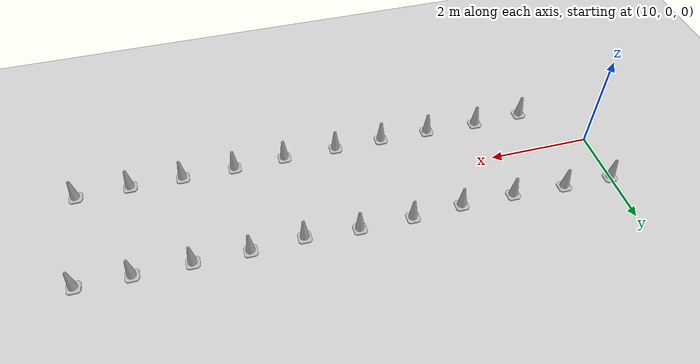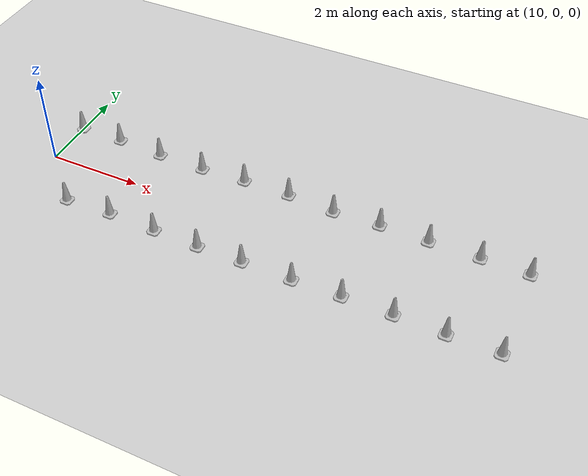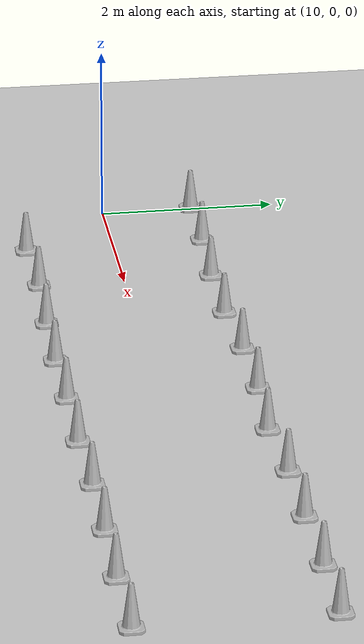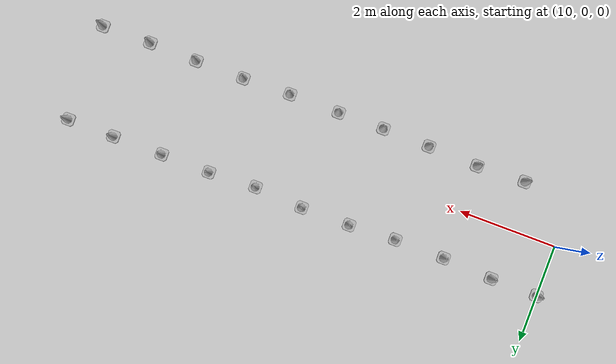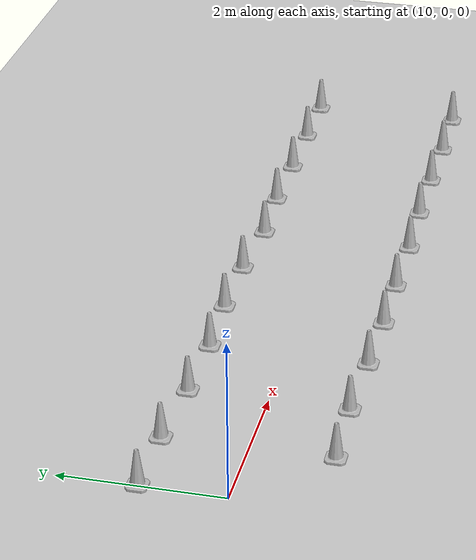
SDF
<sdf version="1.7">
 <world name="default">
  <model name="ground_plane">
   <static>1</static>
   <link name="link">
    <collision name="collision">
     <geometry><plane><normal>0 0 1</normal><size>100 100</size></plane></geometry>
     <surface>
      <contact><collide_bitmask>65535</collide_bitmask></contact>
      <friction><ode><mu>100</mu><mu2>50</mu2></ode></friction>
     </surface>
    </collision>
    <visual name="visual">
     <cast_shadows>0</cast_shadows>
     <geometry><plane><normal>0 0 1</normal><size>100 100</size></plane></geometry>
     <material>
      <script><uri>file://media/materials/scripts/gazebo.material</uri><name>Gazebo/Grey</name></script>
     </material>
    </visual>
   </link>
  </model>
  <model name="Construction_Cone_b_10">
   <link name="link">
    <inertial>
     <inertia><ixx>1</ixx><ixy>0</ixy><ixz>0</ixz><iyy>1</iyy><iyz>0</iyz><izz>1</izz></inertia>
     <mass>1</mass>
    </inertial>
    <visual name="visual">
     <geometry>
      <mesh><scale>4.9 4.9 4.5</scale><uri>./construction_cone/meshes/construction_cone_b.dae</uri></mesh>
     </geometry>
     <material><shader type="pixel"/></material>
    </visual>
    <collision name="collision">
     <geometry>
      <mesh><uri>./construction_cone/meshes/construction_cone_b.dae</uri><scale>4.9 4.9 4.5</scale></mesh>
     </geometry>
     <surface>
      <friction>
       <ode><mu>1</mu><mu2>1</mu2><fdir1>0 0 0</fdir1><slip1>0</slip1><slip2>0</slip2></ode>
       <torsional>
        <coefficient>1</coefficient>
        <patch_radius>0</patch_radius>
        <surface_radius>0</surface_radius>
        <use_patch_radius>1</use_patch_radius>
        <ode><slip>0</slip></ode>
       </torsional>
      </friction>
      <bounce><restitution_coefficient>0</restitution_coefficient><threshold>1e+06</threshold></bounce>
      <contact>
       <collide_without_contact>0</collide_without_contact>
       <collide_without_contact_bitmask>1</collide_without_contact_bitmask>
       <collide_bitmask>1</collide_bitmask>
       <ode>
        <soft_cfm>0</soft_cfm>
        <soft_erp>0.2</soft_erp>
        <kp>1e+13</kp>
        <kd>1</kd>
        <max_vel>0.01</max_vel>
        <min_depth>0</min_depth>
       </ode>
       <bullet>
        <split_impulse>1</split_impulse>
        <split_impulse_penetration_threshold>-0.01</split_impulse_penetration_threshold>
        <soft_cfm>0</soft_cfm>
        <soft_erp>0.2</soft_erp>
        <kp>1e+13</kp>
        <kd>1</kd>
       </bullet>
      </contact>
     </surface>
    </collision>
   </link>
   <static>0</static>
   <pose>11.0021 -1.00628 -1e-06 1e-06 -0 0</pose>
  </model>
  <model name="Construction_Cone_b_11">
   <link name="link">
    <inertial>
     <inertia><ixx>1</ixx><ixy>0</ixy><ixz>0</ixz><iyy>1</iyy><iyz>0</iyz><izz>1</izz></inertia>
     <mass>1</mass>
    </inertial>
    <visual name="visual">
     <geometry>
      <mesh><scale>4.9 4.9 4.5</scale><uri>./construction_cone/meshes/construction_cone_b.dae</uri></mesh>
     </geometry>
     <material><shader type="pixel"/></material>
    </visual>
    <collision name="collision">
     <geometry>
      <mesh><uri>./construction_cone/meshes/construction_cone_b.dae</uri><scale>4.9 4.9 4.5</scale></mesh>
     </geometry>
     <surface>
      <friction>
       <ode><mu>1</mu><mu2>1</mu2><fdir1>0 0 0</fdir1><slip1>0</slip1><slip2>0</slip2></ode>
       <torsional>
        <coefficient>1</coefficient>
        <patch_radius>0</patch_radius>
        <surface_radius>0</surface_radius>
        <use_patch_radius>1</use_patch_radius>
        <ode><slip>0</slip></ode>
       </torsional>
      </friction>
      <bounce><restitution_coefficient>0</restitution_coefficient><threshold>1e+06</threshold></bounce>
      <contact>
       <collide_without_contact>0</collide_without_contact>
       <collide_without_contact_bitmask>1</collide_without_contact_bitmask>
       <collide_bitmask>1</collide_bitmask>
       <ode>
        <soft_cfm>0</soft_cfm>
        <soft_erp>0.2</soft_erp>
        <kp>1e+13</kp>
        <kd>1</kd>
        <max_vel>0.01</max_vel>
        <min_depth>0</min_depth>
       </ode>
       <bullet>
        <split_impulse>1</split_impulse>
        <split_impulse_penetration_threshold>-0.01</split_impulse_penetration_threshold>
        <soft_cfm>0</soft_cfm>
        <soft_erp>0.2</soft_erp>
        <kp>1e+13</kp>
        <kd>1</kd>
       </bullet>
      </contact>
     </surface>
    </collision>
   </link>
   <static>0</static>
   <pose>12.0035 -0.971632 -1e-06 1e-06 1e-06 0</pose>
  </model>
  <model name="Construction_Cone_b_12">
   <link name="link">
    <inertial>
     <inertia><ixx>1</ixx><ixy>0</ixy><ixz>0</ixz><iyy>1</iyy><iyz>0</iyz><izz>1</izz></inertia>
     <mass>1</mass>
    </inertial>
    <visual name="visual">
     <geometry>
      <mesh><scale>4.9 4.9 4.5</scale><uri>./construction_cone/meshes/construction_cone_b.dae</uri></mesh>
     </geometry>
     <material><shader type="pixel"/></material>
    </visual>
    <collision name="collision">
     <geometry>
      <mesh><uri>./construction_cone/meshes/construction_cone_b.dae</uri><scale>4.9 4.9 4.5</scale></mesh>
     </geometry>
     <surface>
      <friction>
       <ode><mu>1</mu><mu2>1</mu2><fdir1>0 0 0</fdir1><slip1>0</slip1><slip2>0</slip2></ode>
       <torsional>
        <coefficient>1</coefficient>
        <patch_radius>0</patch_radius>
        <surface_radius>0</surface_radius>
        <use_patch_radius>1</use_patch_radius>
        <ode><slip>0</slip></ode>
       </torsional>
      </friction>
      <bounce><restitution_coefficient>0</restitution_coefficient><threshold>1e+06</threshold></bounce>
      <contact>
       <collide_without_contact>0</collide_without_contact>
       <collide_without_contact_bitmask>1</collide_without_contact_bitmask>
       <collide_bitmask>1</collide_bitmask>
       <ode>
        <soft_cfm>0</soft_cfm>
        <soft_erp>0.2</soft_erp>
        <kp>1e+13</kp>
        <kd>1</kd>
        <max_vel>0.01</max_vel>
        <min_depth>0</min_depth>
       </ode>
       <bullet>
        <split_impulse>1</split_impulse>
        <split_impulse_penetration_threshold>-0.01</split_impulse_penetration_threshold>
        <soft_cfm>0</soft_cfm>
        <soft_erp>0.2</soft_erp>
        <kp>1e+13</kp>
        <kd>1</kd>
       </bullet>
      </contact>
     </surface>
    </collision>
   </link>
   <static>0</static>
   <pose>13.041 -1.00133 -3e-06 1e-06 -1e-06 0</pose>
  </model>
  <model name="Construction_Cone_b_13">
   <link name="link">
    <inertial>
     <inertia><ixx>1</ixx><ixy>0</ixy><ixz>0</ixz><iyy>1</iyy><iyz>0</iyz><izz>1</izz></inertia>
     <mass>1</mass>
    </inertial>
    <visual name="visual">
     <geometry>
      <mesh><scale>4.9 4.9 4.5</scale><uri>./construction_cone/meshes/construction_cone_b.dae</uri></mesh>
     </geometry>
     <material><shader type="pixel"/></material>
    </visual>
    <collision name="collision">
     <geometry>
      <mesh><uri>./construction_cone/meshes/construction_cone_b.dae</uri><scale>4.9 4.9 4.5</scale></mesh>
     </geometry>
     <surface>
      <friction>
       <ode><mu>1</mu><mu2>1</mu2><fdir1>0 0 0</fdir1><slip1>0</slip1><slip2>0</slip2></ode>
       <torsional>
        <coefficient>1</coefficient>
        <patch_radius>0</patch_radius>
        <surface_radius>0</surface_radius>
        <use_patch_radius>1</use_patch_radius>
        <ode><slip>0</slip></ode>
       </torsional>
      </friction>
      <bounce><restitution_coefficient>0</restitution_coefficient><threshold>1e+06</threshold></bounce>
      <contact>
       <collide_without_contact>0</collide_without_contact>
       <collide_without_contact_bitmask>1</collide_without_contact_bitmask>
       <collide_bitmask>1</collide_bitmask>
       <ode>
        <soft_cfm>0</soft_cfm>
        <soft_erp>0.2</soft_erp>
        <kp>1e+13</kp>
        <kd>1</kd>
        <max_vel>0.01</max_vel>
        <min_depth>0</min_depth>
       </ode>
       <bullet>
        <split_impulse>1</split_impulse>
        <split_impulse_penetration_threshold>-0.01</split_impulse_penetration_threshold>
        <soft_cfm>0</soft_cfm>
        <soft_erp>0.2</soft_erp>
        <kp>1e+13</kp>
        <kd>1</kd>
       </bullet>
      </contact>
     </surface>
    </collision>
   </link>
   <static>0</static>
   <pose>14.0156 -1.01657 -1e-06 1e-06 1e-06 0</pose>
  </model>
  <model name="Construction_Cone_b_14">
   <link name="link">
    <inertial>
     <inertia><ixx>1</ixx><ixy>0</ixy><ixz>0</ixz><iyy>1</iyy><iyz>0</iyz><izz>1</izz></inertia>
     <mass>1</mass>
    </inertial>
    <visual name="visual">
     <geometry>
      <mesh><scale>4.9 4.9 4.5</scale><uri>./construction_cone/meshes/construction_cone_b.dae</uri></mesh>
     </geometry>
     <material><shader type="pixel"/></material>
    </visual>
    <collision name="collision">
     <geometry>
      <mesh><uri>./construction_cone/meshes/construction_cone_b.dae</uri><scale>4.9 4.9 4.5</scale></mesh>
     </geometry>
     <surface>
      <friction>
       <ode><mu>1</mu><mu2>1</mu2><fdir1>0 0 0</fdir1><slip1>0</slip1><slip2>0</slip2></ode>
       <torsional>
        <coefficient>1</coefficient>
        <patch_radius>0</patch_radius>
        <surface_radius>0</surface_radius>
        <use_patch_radius>1</use_patch_radius>
        <ode><slip>0</slip></ode>
       </torsional>
      </friction>
      <bounce><restitution_coefficient>0</restitution_coefficient><threshold>1e+06</threshold></bounce>
      <contact>
       <collide_without_contact>0</collide_without_contact>
       <collide_without_contact_bitmask>1</collide_without_contact_bitmask>
       <collide_bitmask>1</collide_bitmask>
       <ode>
        <soft_cfm>0</soft_cfm>
        <soft_erp>0.2</soft_erp>
        <kp>1e+13</kp>
        <kd>1</kd>
        <max_vel>0.01</max_vel>
        <min_depth>0</min_depth>
       </ode>
       <bullet>
        <split_impulse>1</split_impulse>
        <split_impulse_penetration_threshold>-0.01</split_impulse_penetration_threshold>
        <soft_cfm>0</soft_cfm>
        <soft_erp>0.2</soft_erp>
        <kp>1e+13</kp>
        <kd>1</kd>
       </bullet>
      </contact>
     </surface>
    </collision>
   </link>
   <static>0</static>
   <pose>14.9656 -1.00578 -6e-06 1e-06 -1e-06 0</pose>
  </model>
  <model name="Construction_Cone_b_15">
   <link name="link">
    <inertial>
     <inertia><ixx>1</ixx><ixy>0</ixy><ixz>0</ixz><iyy>1</iyy><iyz>0</iyz><izz>1</izz></inertia>
     <mass>1</mass>
    </inertial>
    <visual name="visual">
     <geometry>
      <mesh><scale>4.9 4.9 4.5</scale><uri>./construction_cone/meshes/construction_cone_b.dae</uri></mesh>
     </geometry>
     <material><shader type="pixel"/></material>
    </visual>
    <collision name="collision">
     <geometry>
      <mesh><uri>./construction_cone/meshes/construction_cone_b.dae</uri><scale>4.9 4.9 4.5</scale></mesh>
     </geometry>
     <surface>
      <friction>
       <ode><mu>1</mu><mu2>1</mu2><fdir1>0 0 0</fdir1><slip1>0</slip1><slip2>0</slip2></ode>
       <torsional>
        <coefficient>1</coefficient>
        <patch_radius>0</patch_radius>
        <surface_radius>0</surface_radius>
        <use_patch_radius>1</use_patch_radius>
        <ode><slip>0</slip></ode>
       </torsional>
      </friction>
      <bounce><restitution_coefficient>0</restitution_coefficient><threshold>1e+06</threshold></bounce>
      <contact>
       <collide_without_contact>0</collide_without_contact>
       <collide_without_contact_bitmask>1</collide_without_contact_bitmask>
       <collide_bitmask>1</collide_bitmask>
       <ode>
        <soft_cfm>0</soft_cfm>
        <soft_erp>0.2</soft_erp>
        <kp>1e+13</kp>
        <kd>1</kd>
        <max_vel>0.01</max_vel>
        <min_depth>0</min_depth>
       </ode>
       <bullet>
        <split_impulse>1</split_impulse>
        <split_impulse_penetration_threshold>-0.01</split_impulse_penetration_threshold>
        <soft_cfm>0</soft_cfm>
        <soft_erp>0.2</soft_erp>
        <kp>1e+13</kp>
        <kd>1</kd>
       </bullet>
      </contact>
     </surface>
    </collision>
   </link>
   <static>0</static>
   <pose>16.0039 -1.01017 -7e-06 -0 -0 -0</pose>
  </model>
  <model name="Construction_Cone_b_16">
   <link name="link">
    <inertial>
     <inertia><ixx>1</ixx><ixy>0</ixy><ixz>0</ixz><iyy>1</iyy><iyz>0</iyz><izz>1</izz></inertia>
     <mass>1</mass>
    </inertial>
    <visual name="visual">
     <geometry>
      <mesh><scale>4.9 4.9 4.5</scale><uri>./construction_cone/meshes/construction_cone_b.dae</uri></mesh>
     </geometry>
     <material><shader type="pixel"/></material>
    </visual>
    <collision name="collision">
     <geometry>
      <mesh><uri>./construction_cone/meshes/construction_cone_b.dae</uri><scale>4.9 4.9 4.5</scale></mesh>
     </geometry>
     <surface>
      <friction>
       <ode><mu>1</mu><mu2>1</mu2><fdir1>0 0 0</fdir1><slip1>0</slip1><slip2>0</slip2></ode>
       <torsional>
        <coefficient>1</coefficient>
        <patch_radius>0</patch_radius>
        <surface_radius>0</surface_radius>
        <use_patch_radius>1</use_patch_radius>
        <ode><slip>0</slip></ode>
       </torsional>
      </friction>
      <bounce><restitution_coefficient>0</restitution_coefficient><threshold>1e+06</threshold></bounce>
      <contact>
       <collide_without_contact>0</collide_without_contact>
       <collide_without_contact_bitmask>1</collide_without_contact_bitmask>
       <collide_bitmask>1</collide_bitmask>
       <ode>
        <soft_cfm>0</soft_cfm>
        <soft_erp>0.2</soft_erp>
        <kp>1e+13</kp>
        <kd>1</kd>
        <max_vel>0.01</max_vel>
        <min_depth>0</min_depth>
       </ode>
       <bullet>
        <split_impulse>1</split_impulse>
        <split_impulse_penetration_threshold>-0.01</split_impulse_penetration_threshold>
        <soft_cfm>0</soft_cfm>
        <soft_erp>0.2</soft_erp>
        <kp>1e+13</kp>
        <kd>1</kd>
       </bullet>
      </contact>
     </surface>
    </collision>
   </link>
   <static>0</static>
   <pose>16.9924 -0.981485 -7e-06 0 -0 0</pose>
  </model>
  <model name="Construction_Cone_b_17">
   <link name="link">
    <inertial>
     <inertia><ixx>1</ixx><ixy>0</ixy><ixz>0</ixz><iyy>1</iyy><iyz>0</iyz><izz>1</izz></inertia>
     <mass>1</mass>
    </inertial>
    <visual name="visual">
     <geometry>
      <mesh><scale>4.9 4.9 4.5</scale><uri>./construction_cone/meshes/construction_cone_b.dae</uri></mesh>
     </geometry>
     <material><shader type="pixel"/></material>
    </visual>
    <collision name="collision">
     <geometry>
      <mesh><uri>./construction_cone/meshes/construction_cone_b.dae</uri><scale>4.9 4.9 4.5</scale></mesh>
     </geometry>
     <surface>
      <friction>
       <ode><mu>1</mu><mu2>1</mu2><fdir1>0 0 0</fdir1><slip1>0</slip1><slip2>0</slip2></ode>
       <torsional>
        <coefficient>1</coefficient>
        <patch_radius>0</patch_radius>
        <surface_radius>0</surface_radius>
        <use_patch_radius>1</use_patch_radius>
        <ode><slip>0</slip></ode>
       </torsional>
      </friction>
      <bounce><restitution_coefficient>0</restitution_coefficient><threshold>1e+06</threshold></bounce>
      <contact>
       <collide_without_contact>0</collide_without_contact>
       <collide_without_contact_bitmask>1</collide_without_contact_bitmask>
       <collide_bitmask>1</collide_bitmask>
       <ode>
        <soft_cfm>0</soft_cfm>
        <soft_erp>0.2</soft_erp>
        <kp>1e+13</kp>
        <kd>1</kd>
        <max_vel>0.01</max_vel>
        <min_depth>0</min_depth>
       </ode>
       <bullet>
        <split_impulse>1</split_impulse>
        <split_impulse_penetration_threshold>-0.01</split_impulse_penetration_threshold>
        <soft_cfm>0</soft_cfm>
        <soft_erp>0.2</soft_erp>
        <kp>1e+13</kp>
        <kd>1</kd>
       </bullet>
      </contact>
     </surface>
    </collision>
   </link>
   <static>0</static>
   <pose>17.9953 -0.982336 -1e-06 1e-06 -0 0</pose>
  </model>
  <model name="Construction_Cone_b_18">
   <link name="link">
    <inertial>
     <inertia><ixx>1</ixx><ixy>0</ixy><ixz>0</ixz><iyy>1</iyy><iyz>0</iyz><izz>1</izz></inertia>
     <mass>1</mass>
    </inertial>
    <visual name="visual">
     <geometry>
      <mesh><scale>4.9 4.9 4.5</scale><uri>./construction_cone/meshes/construction_cone_b.dae</uri></mesh>
     </geometry>
     <material><shader type="pixel"/></material>
    </visual>
    <collision name="collision">
     <geometry>
      <mesh><uri>./construction_cone/meshes/construction_cone_b.dae</uri><scale>4.9 4.9 4.5</scale></mesh>
     </geometry>
     <surface>
      <friction>
       <ode><mu>1</mu><mu2>1</mu2><fdir1>0 0 0</fdir1><slip1>0</slip1><slip2>0</slip2></ode>
       <torsional>
        <coefficient>1</coefficient>
        <patch_radius>0</patch_radius>
        <surface_radius>0</surface_radius>
        <use_patch_radius>1</use_patch_radius>
        <ode><slip>0</slip></ode>
       </torsional>
      </friction>
      <bounce><restitution_coefficient>0</restitution_coefficient><threshold>1e+06</threshold></bounce>
      <contact>
       <collide_without_contact>0</collide_without_contact>
       <collide_without_contact_bitmask>1</collide_without_contact_bitmask>
       <collide_bitmask>1</collide_bitmask>
       <ode>
        <soft_cfm>0</soft_cfm>
        <soft_erp>0.2</soft_erp>
        <kp>1e+13</kp>
        <kd>1</kd>
        <max_vel>0.01</max_vel>
        <min_depth>0</min_depth>
       </ode>
       <bullet>
        <split_impulse>1</split_impulse>
        <split_impulse_penetration_threshold>-0.01</split_impulse_penetration_threshold>
        <soft_cfm>0</soft_cfm>
        <soft_erp>0.2</soft_erp>
        <kp>1e+13</kp>
        <kd>1</kd>
       </bullet>
      </contact>
     </surface>
    </collision>
   </link>
   <static>0</static>
   <pose>18.9838 -0.996706 -0 -0 -0 -0</pose>
  </model>
  <model name="Construction_Cone_b_19">
   <link name="link">
    <inertial>
     <inertia><ixx>1</ixx><ixy>0</ixy><ixz>0</ixz><iyy>1</iyy><iyz>0</iyz><izz>1</izz></inertia>
     <mass>1</mass>
    </inertial>
    <visual name="visual">
     <geometry>
      <mesh><scale>4.9 4.9 4.5</scale><uri>./construction_cone/meshes/construction_cone_b.dae</uri></mesh>
     </geometry>
     <material><shader type="pixel"/></material>
    </visual>
    <collision name="collision">
     <geometry>
      <mesh><uri>./construction_cone/meshes/construction_cone_b.dae</uri><scale>4.9 4.9 4.5</scale></mesh>
     </geometry>
     <surface>
      <friction>
       <ode><mu>1</mu><mu2>1</mu2><fdir1>0 0 0</fdir1><slip1>0</slip1><slip2>0</slip2></ode>
       <torsional>
        <coefficient>1</coefficient>
        <patch_radius>0</patch_radius>
        <surface_radius>0</surface_radius>
        <use_patch_radius>1</use_patch_radius>
        <ode><slip>0</slip></ode>
       </torsional>
      </friction>
      <bounce><restitution_coefficient>0</restitution_coefficient><threshold>1e+06</threshold></bounce>
      <contact>
       <collide_without_contact>0</collide_without_contact>
       <collide_without_contact_bitmask>1</collide_without_contact_bitmask>
       <collide_bitmask>1</collide_bitmask>
       <ode>
        <soft_cfm>0</soft_cfm>
        <soft_erp>0.2</soft_erp>
        <kp>1e+13</kp>
        <kd>1</kd>
        <max_vel>0.01</max_vel>
        <min_depth>0</min_depth>
       </ode>
       <bullet>
        <split_impulse>1</split_impulse>
        <split_impulse_penetration_threshold>-0.01</split_impulse_penetration_threshold>
        <soft_cfm>0</soft_cfm>
        <soft_erp>0.2</soft_erp>
        <kp>1e+13</kp>
        <kd>1</kd>
       </bullet>
      </contact>
     </surface>
    </collision>
   </link>
   <static>0</static>
   <pose>19.9871 -0.983639 -1e-06 1e-06 1e-06 0</pose>
  </model>
  <model name="Construction_Cone_y_9">
   <link name="link">
    <inertial>
     <inertia><ixx>1</ixx><ixy>0</ixy><ixz>0</ixz><iyy>1</iyy><iyz>0</iyz><izz>1</izz></inertia>
     <mass>1</mass>
    </inertial>
    <visual name="visual">
     <geometry>
      <mesh><scale>4.9 4.9 4.5</scale><uri>./construction_cone/meshes/construction_cone_y.dae</uri></mesh>
     </geometry>
     <material><shader type="pixel"/></material>
    </visual>
    <collision name="collision">
     <geometry>
      <mesh><uri>./construction_cone/meshes/construction_cone_y.dae</uri><scale>4.9 4.9 4.5</scale></mesh>
     </geometry>
     <surface>
      <friction>
       <ode><mu>1</mu><mu2>1</mu2><fdir1>0 0 0</fdir1><slip1>0</slip1><slip2>0</slip2></ode>
       <torsional>
        <coefficient>1</coefficient>
        <patch_radius>0</patch_radius>
        <surface_radius>0</surface_radius>
        <use_patch_radius>1</use_patch_radius>
        <ode><slip>0</slip></ode>
       </torsional>
      </friction>
      <bounce><restitution_coefficient>0</restitution_coefficient><threshold>1e+06</threshold></bounce>
      <contact>
       <collide_without_contact>0</collide_without_contact>
       <collide_without_contact_bitmask>1</collide_without_contact_bitmask>
       <collide_bitmask>1</collide_bitmask>
       <ode>
        <soft_cfm>0</soft_cfm>
        <soft_erp>0.2</soft_erp>
        <kp>1e+13</kp>
        <kd>1</kd>
        <max_vel>0.01</max_vel>
        <min_depth>0</min_depth>
       </ode>
       <bullet>
        <split_impulse>1</split_impulse>
        <split_impulse_penetration_threshold>-0.01</split_impulse_penetration_threshold>
        <soft_cfm>0</soft_cfm>
        <soft_erp>0.2</soft_erp>
        <kp>1e+13</kp>
        <kd>1</kd>
       </bullet>
      </contact>
     </surface>
    </collision>
   </link>
   <static>0</static>
   <pose>10.0045 1.04214 -7e-06 3e-06 -1e-06 0</pose>
  </model>
  <model name="Construction_Cone_y_10">
   <link name="link">
    <inertial>
     <inertia><ixx>1</ixx><ixy>0</ixy><ixz>0</ixz><iyy>1</iyy><iyz>0</iyz><izz>1</izz></inertia>
     <mass>1</mass>
    </inertial>
    <visual name="visual">
     <geometry>
      <mesh><scale>4.9 4.9 4.5</scale><uri>./construction_cone/meshes/construction_cone_y.dae</uri></mesh>
     </geometry>
     <material><shader type="pixel"/></material>
    </visual>
    <collision name="collision">
     <geometry>
      <mesh><uri>./construction_cone/meshes/construction_cone_y.dae</uri><scale>4.9 4.9 4.5</scale></mesh>
     </geometry>
     <surface>
      <friction>
       <ode><mu>1</mu><mu2>1</mu2><fdir1>0 0 0</fdir1><slip1>0</slip1><slip2>0</slip2></ode>
       <torsional>
        <coefficient>1</coefficient>
        <patch_radius>0</patch_radius>
        <surface_radius>0</surface_radius>
        <use_patch_radius>1</use_patch_radius>
        <ode><slip>0</slip></ode>
       </torsional>
      </friction>
      <bounce><restitution_coefficient>0</restitution_coefficient><threshold>1e+06</threshold></bounce>
      <contact>
       <collide_without_contact>0</collide_without_contact>
       <collide_without_contact_bitmask>1</collide_without_contact_bitmask>
       <collide_bitmask>1</collide_bitmask>
       <ode>
        <soft_cfm>0</soft_cfm>
        <soft_erp>0.2</soft_erp>
        <kp>1e+13</kp>
        <kd>1</kd>
        <max_vel>0.01</max_vel>
        <min_depth>0</min_depth>
       </ode>
       <bullet>
        <split_impulse>1</split_impulse>
        <split_impulse_penetration_threshold>-0.01</split_impulse_penetration_threshold>
        <soft_cfm>0</soft_cfm>
        <soft_erp>0.2</soft_erp>
        <kp>1e+13</kp>
        <kd>1</kd>
       </bullet>
      </contact>
     </surface>
    </collision>
   </link>
   <static>0</static>
   <pose>10.9677 1.03647 -2e-06 1e-06 1e-06 0</pose>
  </model>
  <model name="Construction_Cone_y_11">
   <link name="link">
    <inertial>
     <inertia><ixx>1</ixx><ixy>0</ixy><ixz>0</ixz><iyy>1</iyy><iyz>0</iyz><izz>1</izz></inertia>
     <mass>1</mass>
    </inertial>
    <visual name="visual">
     <geometry>
      <mesh><scale>4.9 4.9 4.5</scale><uri>./construction_cone/meshes/construction_cone_y.dae</uri></mesh>
     </geometry>
     <material><shader type="pixel"/></material>
    </visual>
    <collision name="collision">
     <geometry>
      <mesh><uri>./construction_cone/meshes/construction_cone_y.dae</uri><scale>4.9 4.9 4.5</scale></mesh>
     </geometry>
     <surface>
      <friction>
       <ode><mu>1</mu><mu2>1</mu2><fdir1>0 0 0</fdir1><slip1>0</slip1><slip2>0</slip2></ode>
       <torsional>
        <coefficient>1</coefficient>
        <patch_radius>0</patch_radius>
        <surface_radius>0</surface_radius>
        <use_patch_radius>1</use_patch_radius>
        <ode><slip>0</slip></ode>
       </torsional>
      </friction>
      <bounce><restitution_coefficient>0</restitution_coefficient><threshold>1e+06</threshold></bounce>
      <contact>
       <collide_without_contact>0</collide_without_contact>
       <collide_without_contact_bitmask>1</collide_without_contact_bitmask>
       <collide_bitmask>1</collide_bitmask>
       <ode>
        <soft_cfm>0</soft_cfm>
        <soft_erp>0.2</soft_erp>
        <kp>1e+13</kp>
        <kd>1</kd>
        <max_vel>0.01</max_vel>
        <min_depth>0</min_depth>
       </ode>
       <bullet>
        <split_impulse>1</split_impulse>
        <split_impulse_penetration_threshold>-0.01</split_impulse_penetration_threshold>
        <soft_cfm>0</soft_cfm>
        <soft_erp>0.2</soft_erp>
        <kp>1e+13</kp>
        <kd>1</kd>
       </bullet>
      </contact>
     </surface>
    </collision>
   </link>
   <static>0</static>
   <pose>11.9953 0.985157 -1e-06 1e-06 -0 0</pose>
  </model>
  <model name="Construction_Cone_y_12">
   <link name="link">
    <inertial>
     <inertia><ixx>1</ixx><ixy>0</ixy><ixz>0</ixz><iyy>1</iyy><iyz>0</iyz><izz>1</izz></inertia>
     <mass>1</mass>
    </inertial>
    <visual name="visual">
     <geometry>
      <mesh><scale>4.9 4.9 4.5</scale><uri>./construction_cone/meshes/construction_cone_y.dae</uri></mesh>
     </geometry>
     <material><shader type="pixel"/></material>
    </visual>
    <collision name="collision">
     <geometry>
      <mesh><uri>./construction_cone/meshes/construction_cone_y.dae</uri><scale>4.9 4.9 4.5</scale></mesh>
     </geometry>
     <surface>
      <friction>
       <ode><mu>1</mu><mu2>1</mu2><fdir1>0 0 0</fdir1><slip1>0</slip1><slip2>0</slip2></ode>
       <torsional>
        <coefficient>1</coefficient>
        <patch_radius>0</patch_radius>
        <surface_radius>0</surface_radius>
        <use_patch_radius>1</use_patch_radius>
        <ode><slip>0</slip></ode>
       </torsional>
      </friction>
      <bounce><restitution_coefficient>0</restitution_coefficient><threshold>1e+06</threshold></bounce>
      <contact>
       <collide_without_contact>0</collide_without_contact>
       <collide_without_contact_bitmask>1</collide_without_contact_bitmask>
       <collide_bitmask>1</collide_bitmask>
       <ode>
        <soft_cfm>0</soft_cfm>
        <soft_erp>0.2</soft_erp>
        <kp>1e+13</kp>
        <kd>1</kd>
        <max_vel>0.01</max_vel>
        <min_depth>0</min_depth>
       </ode>
       <bullet>
        <split_impulse>1</split_impulse>
        <split_impulse_penetration_threshold>-0.01</split_impulse_penetration_threshold>
        <soft_cfm>0</soft_cfm>
        <soft_erp>0.2</soft_erp>
        <kp>1e+13</kp>
        <kd>1</kd>
       </bullet>
      </contact>
     </surface>
    </collision>
   </link>
   <static>0</static>
   <pose>13.0241 0.977599 -3e-06 0 -2e-06 0</pose>
  </model>
  <model name="Construction_Cone_y_13">
   <link name="link">
    <inertial>
     <inertia><ixx>1</ixx><ixy>0</ixy><ixz>0</ixz><iyy>1</iyy><iyz>0</iyz><izz>1</izz></inertia>
     <mass>1</mass>
    </inertial>
    <visual name="visual">
     <geometry>
      <mesh><scale>4.9 4.9 4.5</scale><uri>./construction_cone/meshes/construction_cone_y.dae</uri></mesh>
     </geometry>
     <material><shader type="pixel"/></material>
    </visual>
    <collision name="collision">
     <geometry>
      <mesh><uri>./construction_cone/meshes/construction_cone_y.dae</uri><scale>4.9 4.9 4.5</scale></mesh>
     </geometry>
     <surface>
      <friction>
       <ode><mu>1</mu><mu2>1</mu2><fdir1>0 0 0</fdir1><slip1>0</slip1><slip2>0</slip2></ode>
       <torsional>
        <coefficient>1</coefficient>
        <patch_radius>0</patch_radius>
        <surface_radius>0</surface_radius>
        <use_patch_radius>1</use_patch_radius>
        <ode><slip>0</slip></ode>
       </torsional>
      </friction>
      <bounce><restitution_coefficient>0</restitution_coefficient><threshold>1e+06</threshold></bounce>
      <contact>
       <collide_without_contact>0</collide_without_contact>
       <collide_without_contact_bitmask>1</collide_without_contact_bitmask>
       <collide_bitmask>1</collide_bitmask>
       <ode>
        <soft_cfm>0</soft_cfm>
        <soft_erp>0.2</soft_erp>
        <kp>1e+13</kp>
        <kd>1</kd>
        <max_vel>0.01</max_vel>
        <min_depth>0</min_depth>
       </ode>
       <bullet>
        <split_impulse>1</split_impulse>
        <split_impulse_penetration_threshold>-0.01</split_impulse_penetration_threshold>
        <soft_cfm>0</soft_cfm>
        <soft_erp>0.2</soft_erp>
        <kp>1e+13</kp>
        <kd>1</kd>
       </bullet>
      </contact>
     </surface>
    </collision>
   </link>
   <static>0</static>
   <pose>13.9889 1.02661 -3e-06 1e-06 -1e-06 0</pose>
  </model>
  <model name="Construction_Cone_y_14">
   <link name="link">
    <inertial>
     <inertia><ixx>1</ixx><ixy>0</ixy><ixz>0</ixz><iyy>1</iyy><iyz>0</iyz><izz>1</izz></inertia>
     <mass>1</mass>
    </inertial>
    <visual name="visual">
     <geometry>
      <mesh><scale>4.9 4.9 4.5</scale><uri>./construction_cone/meshes/construction_cone_y.dae</uri></mesh>
     </geometry>
     <material><shader type="pixel"/></material>
    </visual>
    <collision name="collision">
     <geometry>
      <mesh><uri>./construction_cone/meshes/construction_cone_y.dae</uri><scale>4.9 4.9 4.5</scale></mesh>
     </geometry>
     <surface>
      <friction>
       <ode><mu>1</mu><mu2>1</mu2><fdir1>0 0 0</fdir1><slip1>0</slip1><slip2>0</slip2></ode>
       <torsional>
        <coefficient>1</coefficient>
        <patch_radius>0</patch_radius>
        <surface_radius>0</surface_radius>
        <use_patch_radius>1</use_patch_radius>
        <ode><slip>0</slip></ode>
       </torsional>
      </friction>
      <bounce><restitution_coefficient>0</restitution_coefficient><threshold>1e+06</threshold></bounce>
      <contact>
       <collide_without_contact>0</collide_without_contact>
       <collide_without_contact_bitmask>1</collide_without_contact_bitmask>
       <collide_bitmask>1</collide_bitmask>
       <ode>
        <soft_cfm>0</soft_cfm>
        <soft_erp>0.2</soft_erp>
        <kp>1e+13</kp>
        <kd>1</kd>
        <max_vel>0.01</max_vel>
        <min_depth>0</min_depth>
       </ode>
       <bullet>
        <split_impulse>1</split_impulse>
        <split_impulse_penetration_threshold>-0.01</split_impulse_penetration_threshold>
        <soft_cfm>0</soft_cfm>
        <soft_erp>0.2</soft_erp>
        <kp>1e+13</kp>
        <kd>1</kd>
       </bullet>
      </contact>
     </surface>
    </collision>
   </link>
   <static>0</static>
   <pose>14.9962 1.03062 -6e-06 0 -0 0</pose>
  </model>
  <model name="Construction_Cone_y_15">
   <link name="link">
    <inertial>
     <inertia><ixx>1</ixx><ixy>0</ixy><ixz>0</ixz><iyy>1</iyy><iyz>0</iyz><izz>1</izz></inertia>
     <mass>1</mass>
    </inertial>
    <visual name="visual">
     <geometry>
      <mesh><scale>4.9 4.9 4.5</scale><uri>./construction_cone/meshes/construction_cone_y.dae</uri></mesh>
     </geometry>
     <material><shader type="pixel"/></material>
    </visual>
    <collision name="collision">
     <geometry>
      <mesh><uri>./construction_cone/meshes/construction_cone_y.dae</uri><scale>4.9 4.9 4.5</scale></mesh>
     </geometry>
     <surface>
      <friction>
       <ode><mu>1</mu><mu2>1</mu2><fdir1>0 0 0</fdir1><slip1>0</slip1><slip2>0</slip2></ode>
       <torsional>
        <coefficient>1</coefficient>
        <patch_radius>0</patch_radius>
        <surface_radius>0</surface_radius>
        <use_patch_radius>1</use_patch_radius>
        <ode><slip>0</slip></ode>
       </torsional>
      </friction>
      <bounce><restitution_coefficient>0</restitution_coefficient><threshold>1e+06</threshold></bounce>
      <contact>
       <collide_without_contact>0</collide_without_contact>
       <collide_without_contact_bitmask>1</collide_without_contact_bitmask>
       <collide_bitmask>1</collide_bitmask>
       <ode>
        <soft_cfm>0</soft_cfm>
        <soft_erp>0.2</soft_erp>
        <kp>1e+13</kp>
        <kd>1</kd>
        <max_vel>0.01</max_vel>
        <min_depth>0</min_depth>
       </ode>
       <bullet>
        <split_impulse>1</split_impulse>
        <split_impulse_penetration_threshold>-0.01</split_impulse_penetration_threshold>
        <soft_cfm>0</soft_cfm>
        <soft_erp>0.2</soft_erp>
        <kp>1e+13</kp>
        <kd>1</kd>
       </bullet>
      </contact>
     </surface>
    </collision>
   </link>
   <static>0</static>
   <pose>16.0016 0.968997 -3e-06 1e-06 -0 0</pose>
  </model>
  <model name="Construction_Cone_y_16">
   <link name="link">
    <inertial>
     <inertia><ixx>1</ixx><ixy>0</ixy><ixz>0</ixz><iyy>1</iyy><iyz>0</iyz><izz>1</izz></inertia>
     <mass>1</mass>
    </inertial>
    <visual name="visual">
     <geometry>
      <mesh><scale>4.9 4.9 4.5</scale><uri>./construction_cone/meshes/construction_cone_y.dae</uri></mesh>
     </geometry>
     <material><shader type="pixel"/></material>
    </visual>
    <collision name="collision">
     <geometry>
      <mesh><uri>./construction_cone/meshes/construction_cone_y.dae</uri><scale>4.9 4.9 4.5</scale></mesh>
     </geometry>
     <surface>
      <friction>
       <ode><mu>1</mu><mu2>1</mu2><fdir1>0 0 0</fdir1><slip1>0</slip1><slip2>0</slip2></ode>
       <torsional>
        <coefficient>1</coefficient>
        <patch_radius>0</patch_radius>
        <surface_radius>0</surface_radius>
        <use_patch_radius>1</use_patch_radius>
        <ode><slip>0</slip></ode>
       </torsional>
      </friction>
      <bounce><restitution_coefficient>0</restitution_coefficient><threshold>1e+06</threshold></bounce>
      <contact>
       <collide_without_contact>0</collide_without_contact>
       <collide_without_contact_bitmask>1</collide_without_contact_bitmask>
       <collide_bitmask>1</collide_bitmask>
       <ode>
        <soft_cfm>0</soft_cfm>
        <soft_erp>0.2</soft_erp>
        <kp>1e+13</kp>
        <kd>1</kd>
        <max_vel>0.01</max_vel>
        <min_depth>0</min_depth>
       </ode>
       <bullet>
        <split_impulse>1</split_impulse>
        <split_impulse_penetration_threshold>-0.01</split_impulse_penetration_threshold>
        <soft_cfm>0</soft_cfm>
        <soft_erp>0.2</soft_erp>
        <kp>1e+13</kp>
        <kd>1</kd>
       </bullet>
      </contact>
     </surface>
    </collision>
   </link>
   <static>0</static>
   <pose>16.9773 1.0177 -7e-06 -1e-06 1e-06 0</pose>
  </model>
  <model name="Construction_Cone_y_17">
   <link name="link">
    <inertial>
     <inertia><ixx>1</ixx><ixy>0</ixy><ixz>0</ixz><iyy>1</iyy><iyz>0</iyz><izz>1</izz></inertia>
     <mass>1</mass>
    </inertial>
    <visual name="visual">
     <geometry>
      <mesh><scale>4.9 4.9 4.5</scale><uri>./construction_cone/meshes/construction_cone_y.dae</uri></mesh>
     </geometry>
     <material><shader type="pixel"/></material>
    </visual>
    <collision name="collision">
     <geometry>
      <mesh><uri>./construction_cone/meshes/construction_cone_y.dae</uri><scale>4.9 4.9 4.5</scale></mesh>
     </geometry>
     <surface>
      <friction>
       <ode><mu>1</mu><mu2>1</mu2><fdir1>0 0 0</fdir1><slip1>0</slip1><slip2>0</slip2></ode>
       <torsional>
        <coefficient>1</coefficient>
        <patch_radius>0</patch_radius>
        <surface_radius>0</surface_radius>
        <use_patch_radius>1</use_patch_radius>
        <ode><slip>0</slip></ode>
       </torsional>
      </friction>
      <bounce><restitution_coefficient>0</restitution_coefficient><threshold>1e+06</threshold></bounce>
      <contact>
       <collide_without_contact>0</collide_without_contact>
       <collide_without_contact_bitmask>1</collide_without_contact_bitmask>
       <collide_bitmask>1</collide_bitmask>
       <ode>
        <soft_cfm>0</soft_cfm>
        <soft_erp>0.2</soft_erp>
        <kp>1e+13</kp>
        <kd>1</kd>
        <max_vel>0.01</max_vel>
        <min_depth>0</min_depth>
       </ode>
       <bullet>
        <split_impulse>1</split_impulse>
        <split_impulse_penetration_threshold>-0.01</split_impulse_penetration_threshold>
        <soft_cfm>0</soft_cfm>
        <soft_erp>0.2</soft_erp>
        <kp>1e+13</kp>
        <kd>1</kd>
       </bullet>
      </contact>
     </surface>
    </collision>
   </link>
   <static>0</static>
   <pose>17.9843 1.01076 -9e-06 0 -3e-06 0</pose>
  </model>
  <model name="Construction_Cone_y_18">
   <link name="link">
    <inertial>
     <inertia><ixx>1</ixx><ixy>0</ixy><ixz>0</ixz><iyy>1</iyy><iyz>0</iyz><izz>1</izz></inertia>
     <mass>1</mass>
    </inertial>
    <visual name="visual">
     <geometry>
      <mesh><scale>4.9 4.9 4.5</scale><uri>./construction_cone/meshes/construction_cone_y.dae</uri></mesh>
     </geometry>
     <material><shader type="pixel"/></material>
    </visual>
    <collision name="collision">
     <geometry>
      <mesh><uri>./construction_cone/meshes/construction_cone_y.dae</uri><scale>4.9 4.9 4.5</scale></mesh>
     </geometry>
     <surface>
      <friction>
       <ode><mu>1</mu><mu2>1</mu2><fdir1>0 0 0</fdir1><slip1>0</slip1><slip2>0</slip2></ode>
       <torsional>
        <coefficient>1</coefficient>
        <patch_radius>0</patch_radius>
        <surface_radius>0</surface_radius>
        <use_patch_radius>1</use_patch_radius>
        <ode><slip>0</slip></ode>
       </torsional>
      </friction>
      <bounce><restitution_coefficient>0</restitution_coefficient><threshold>1e+06</threshold></bounce>
      <contact>
       <collide_without_contact>0</collide_without_contact>
       <collide_without_contact_bitmask>1</collide_without_contact_bitmask>
       <collide_bitmask>1</collide_bitmask>
       <ode>
        <soft_cfm>0</soft_cfm>
        <soft_erp>0.2</soft_erp>
        <kp>1e+13</kp>
        <kd>1</kd>
        <max_vel>0.01</max_vel>
        <min_depth>0</min_depth>
       </ode>
       <bullet>
        <split_impulse>1</split_impulse>
        <split_impulse_penetration_threshold>-0.01</split_impulse_penetration_threshold>
        <soft_cfm>0</soft_cfm>
        <soft_erp>0.2</soft_erp>
        <kp>1e+13</kp>
        <kd>1</kd>
       </bullet>
      </contact>
     </surface>
    </collision>
   </link>
   <static>0</static>
   <pose>19.0135 1.01415 -2e-06 0 -0 0</pose>
  </model>
  <model name="Construction_Cone_y_19">
   <link name="link">
    <inertial>
     <inertia><ixx>1</ixx><ixy>0</ixy><ixz>0</ixz><iyy>1</iyy><iyz>0</iyz><izz>1</izz></inertia>
     <mass>1</mass>
    </inertial>
    <visual name="visual">
     <geometry>
      <mesh><scale>4.9 4.9 4.5</scale><uri>./construction_cone/meshes/construction_cone_y.dae</uri></mesh>
     </geometry>
     <material><shader type="pixel"/></material>
    </visual>
    <collision name="collision">
     <geometry>
      <mesh><uri>./construction_cone/meshes/construction_cone_y.dae</uri><scale>4.9 4.9 4.5</scale></mesh>
     </geometry>
     <surface>
      <friction>
       <ode><mu>1</mu><mu2>1</mu2><fdir1>0 0 0</fdir1><slip1>0</slip1><slip2>0</slip2></ode>
       <torsional>
        <coefficient>1</coefficient>
        <patch_radius>0</patch_radius>
        <surface_radius>0</surface_radius>
        <use_patch_radius>1</use_patch_radius>
        <ode><slip>0</slip></ode>
       </torsional>
      </friction>
      <bounce><restitution_coefficient>0</restitution_coefficient><threshold>1e+06</threshold></bounce>
      <contact>
       <collide_without_contact>0</collide_without_contact>
       <collide_without_contact_bitmask>1</collide_without_contact_bitmask>
       <collide_bitmask>1</collide_bitmask>
       <ode>
        <soft_cfm>0</soft_cfm>
        <soft_erp>0.2</soft_erp>
        <kp>1e+13</kp>
        <kd>1</kd>
        <max_vel>0.01</max_vel>
        <min_depth>0</min_depth>
       </ode>
       <bullet>
        <split_impulse>1</split_impulse>
        <split_impulse_penetration_threshold>-0.01</split_impulse_penetration_threshold>
        <soft_cfm>0</soft_cfm>
        <soft_erp>0.2</soft_erp>
        <kp>1e+13</kp>
        <kd>1</kd>
       </bullet>
      </contact>
     </surface>
    </collision>
   </link>
   <static>0</static>
   <pose>19.9767 1.00847 -0 -1e-06 -1e-06 0</pose>
  </model>
 </world>
</sdf>
